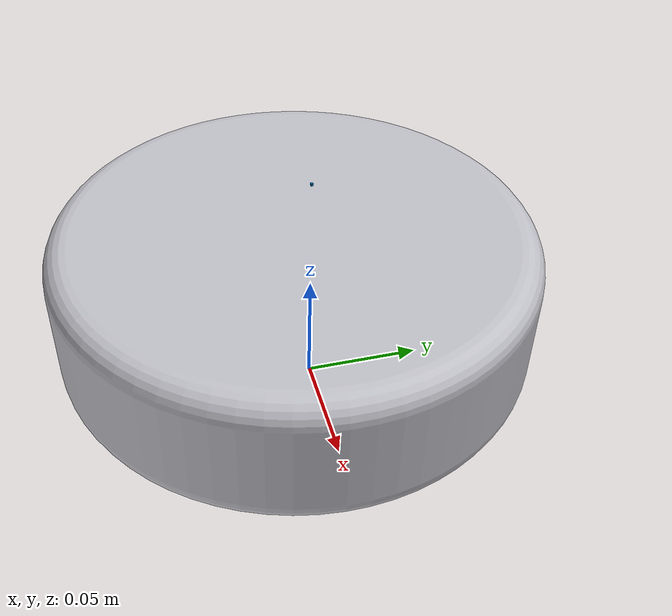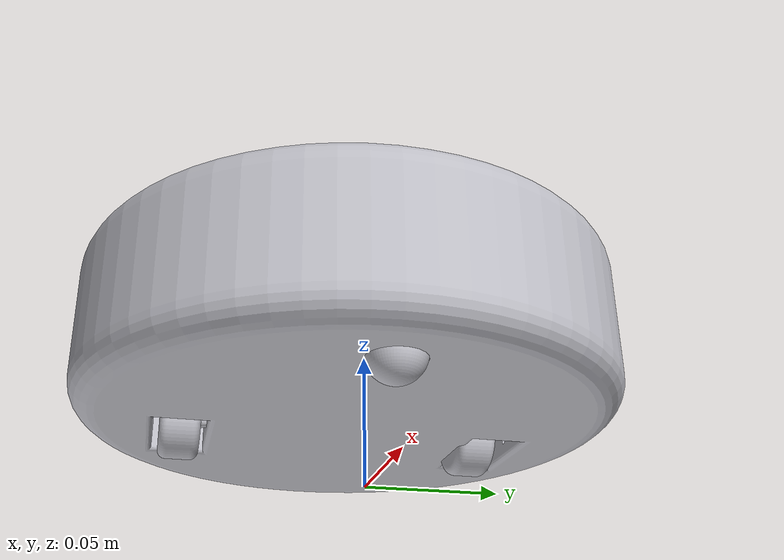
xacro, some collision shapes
<?xml version="1.0" ?>
<robot name="my_robot" xmlns:xacro="http://www.ros.org/wiki/xacro">

<xacro:include filename="$(find my_robot)/robot/urdf/materials.xacro" />
<xacro:include filename="$(find my_robot)/robot/urdf/my_robot.trans" />
<xacro:include filename="$(find my_robot)/robot/urdf/my_robot.gazebo" />
<link name="base_link">
  <inertial>

    <mass value="100.0"/>
    <inertia ixx="0.05" ixy="0" ixz="0" iyy="0.05" iyz="0.0" izz="0.05"/>
  </inertial>
  <visual>
    <origin rpy="0 0 0" xyz="0 0 0"/>
    <geometry>
      <mesh filename="package://my_robot/robot/meshes/base_link.stl" scale="0.001 0.001 0.001"/>
    </geometry>
    <material name="silver"/>
  </visual>
  <collision>
    <origin rpy="0 0 0" xyz="0 0 0"/>
    <geometry>
      <mesh filename="package://my_robot/robot/meshes/base_link.stl" scale="0.001 0.001 0.001"/>
    </geometry>
  </collision>
</link>

<link name="left_wheel_1">
  <inertial>
    <origin rpy="0 0 0" xyz="2.544782153543479e-07 -0.009958178871430495 4.6708752726720704e-08"/>
    <mass value="40"/>
    <inertia ixx="6e-06" ixy="-0.0" ixz="-0.0" iyy="9e-06" iyz="0.0" izz="6e-06"/>
  </inertial>
  <visual>
    <origin rpy="0 0 0" xyz="0.02055 -0.062976 -0.027682"/>
    <geometry>
      <mesh filename="package://my_robot/robot/meshes/left_wheel_1.stl" scale="0.001 0.001 0.001"/>
    </geometry>
    <material name="silver"/>
  </visual>
  <collision>
    <origin rpy="0 0 0" xyz="0.02055 -0.062976 -0.027682"/>
    <geometry>
      <mesh filename="package://my_robot/robot/meshes/left_wheel_1.stl" scale="0.001 0.001 0.001"/>
    </geometry>
  </collision>
</link>

<link name="right_wheel_1">
  <inertial>
    <origin rpy="0 0 0" xyz="2.544782172382576e-07 -0.009958178871433444 4.6708753670410275e-08"/>
    <mass value="40"/>
    <inertia ixx="6e-06" ixy="-0.0" ixz="0.0" iyy="9e-06" iyz="-0.0" izz="6e-06"/>
  </inertial>
  <visual>
    <origin rpy="0 0 0" xyz="0.02055 0.057024 -0.027682"/>
    <geometry>
      <mesh filename="package://my_robot/robot/meshes/right_wheel_1.stl" scale="0.001 0.001 0.001"/>
    </geometry>
    <material name="silver"/>
  </visual>
  <collision>
    <origin rpy="0 0 0" xyz="0.02055 0.057024 -0.027682"/>
    <geometry>
      <mesh filename="package://my_robot/robot/meshes/right_wheel_1.stl" scale="0.001 0.001 0.001"/>
    </geometry>
  </collision>
</link>

<link name="castor_wheel_1">
  <inertial>
    <origin rpy="0 0 0" xyz="6.56627530126741e-13 1.3790065032416587e-07 -0.0037499532912473946"/>
    <mass value="0.016441001553786583"/>
    <inertia ixx="0.0" ixy="-0.0" ixz="0.0" iyy="0.0" iyz="0.0" izz="1e-06"/>
  </inertial>
  <visual>
    <origin rpy="0 0 0" xyz="-0.07 0.007024 -0.022682"/>
    <geometry>
      <mesh filename="package://my_robot/robot/meshes/castor_wheel_1.stl" scale="0.001 0.001 0.001"/>
    </geometry>
    <material name="silver"/>
  </visual>
  <collision>
    <origin rpy="0 0 0" xyz="-0.07 0.007024 -0.022682"/>
    <geometry>
      <mesh filename="package://my_robot/robot/meshes/castor_wheel_1.stl" scale="0.001 0.001 0.001"/>
    </geometry>
  </collision>
</link>

<!-- Hokuyo Laser -->
  <link name="hokuyo">
    <collision>
      <origin xyz="0 0 0" rpy="0 0 0"/>
      <geometry>
    <box size="0.001 0.001 0.001"/>
      </geometry>
    </collision>

    <visual>
      <origin xyz="0 0 0" rpy="0 0 0"/>
      <geometry>
        <mesh filename="package://my_robot/robot/meshes/hokuyo.dae"/>
      </geometry>
    </visual>

    <inertial>
      <mass value="1e-5" />
      <origin xyz="0 0 0" rpy="0 0 0"/>
      <inertia ixx="1e-6" ixy="0" ixz="0" iyy="1e-6" iyz="0" izz="1e-6" />
    </inertial>
  </link>

  <!-- rplidar Laser -->

<joint name="left_wheel_joint" type="continuous">

  <origin rpy="0 0 0" xyz="-0.02055 0.057024 0.027682"/>
  <parent link="base_link"/>
  <child link="left_wheel_1"/>
  <axis xyz="0.0 1.0 0.0"/>
</joint>

<joint name="right_wheel_joint" type="continuous">

  <origin rpy="0 0 0" xyz="-0.02055 -0.057024 0.027682"/>
  <parent link="base_link"/>
  <child link="right_wheel_1"/>
  <axis xyz="0.0 1.0 0.0"/>
</joint>

<joint name="castor_joint" type="fixed">
  <origin rpy="0 0 0.1" xyz="0.07 -0.007024 0.022682"/>
  <parent link="base_link"/>
  <child link="castor_wheel_1"/>
</joint>

  <joint name="hokuyo_joint" type="fixed">
    <axis xyz="0 1 0" />
    <origin xyz="0 0 .1" rpy="0 0 0"/>
    <parent link="base_link"/>
    <child link="hokuyo"/>
  </joint>

</robot>

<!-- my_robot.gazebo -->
<robot name="my_robot" xmlns:xacro="http://www.ros.org/wiki/xacro" >

<xacro:property name="body_color" value="Gazebo/Silver" />

<gazebo>
  <plugin filename="libgazebo_ros_control.so" name="gazebo_ros_control">
  <legacyModeNS>true</legacyModeNS>
  <robotSimType>gazebo_ros_control/DefaultRobotHWSim</robotSimType>
  </plugin>
</gazebo>
<gazebo reference="base_link">
  <material>${body_color}</material>
  <mu1>0.2</mu1>
  <mu2>0.2</mu2>
  <gravity>true</gravity>
</gazebo>

<gazebo reference="left_wheel_1">
  <material>${body_color}</material>
  <mu1>0.6</mu1>
  <mu2>0.6</mu2>
</gazebo>

<gazebo reference="right_wheel_1">
  <material>${body_color}</material>
  <mu1>0.6</mu1>
  <mu2>0.6</mu2>
</gazebo>

<gazebo reference="castor_wheel_1">
  <material>${body_color}</material>
  <mu1>0.2</mu1>
  <mu2>0.2</mu2>
</gazebo>

  <gazebo reference="hokuyo">
    <sensor type="ray" name="head_hokuyo_sensor">
      <pose>0 0 0 0 0 0</pose>
      <visualize>false</visualize>
      <update_rate>50</update_rate>
      <ray>
        <scan>
          <horizontal>
            <samples>720</samples>
            <resolution>1</resolution>
            <min_angle>-1.570796</min_angle>
            <max_angle>1.570796</max_angle>
          </horizontal>
        </scan>
        <range>
          <min>0.10</min>
          <max>30.0</max>
          <resolution>0.01</resolution>
        </range>
        <noise>
          <type>gaussian</type>
          <mean>0.0</mean>
          <stddev>0.01</stddev>
        </noise>
      </ray>
      <plugin name="gazebo_ros_head_hokuyo_controller" filename="libgazebo_ros_laser.so">
        <topicName>/scan</topicName>
        <frameName>hokuyo</frameName>
      </plugin>
    </sensor>
  </gazebo>

</robot>
